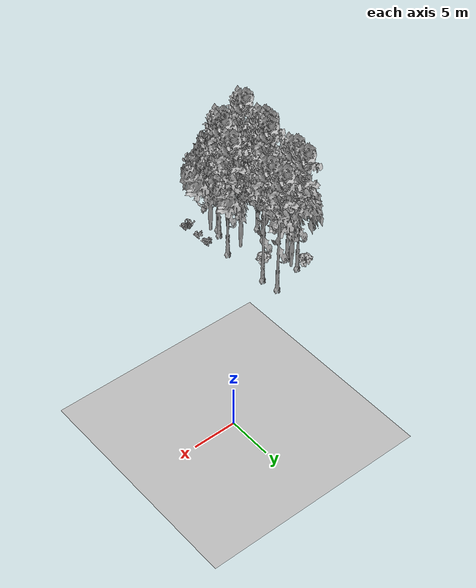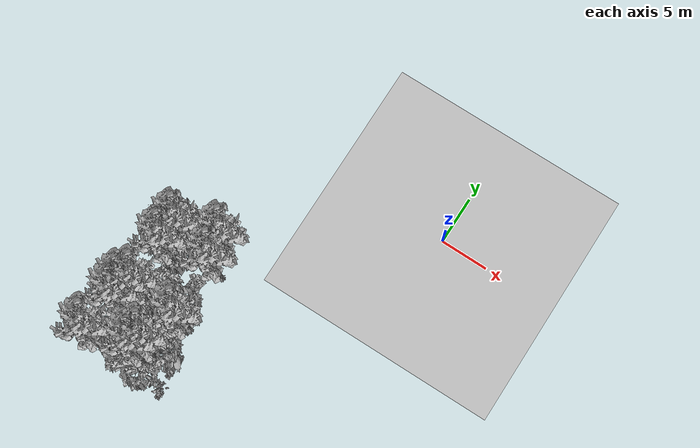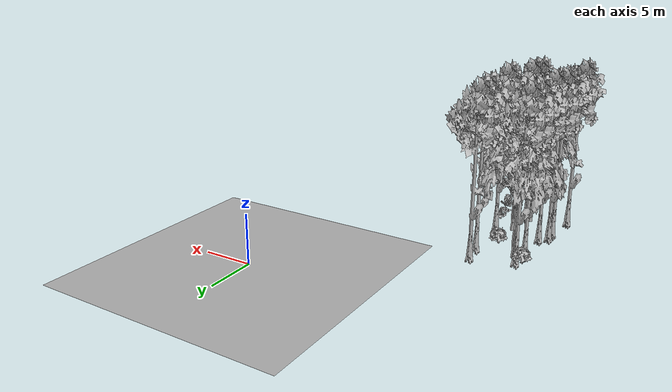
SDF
<sdf version="1.7">
 <world name="default">
  <model name="ground_plane">
   <static>1</static>
   <link name="link">
    <collision name="collision">
     <pose>-50 0 0 0 -0 0</pose>
     <geometry><plane><normal>0 0 1</normal><size>80 80</size></plane></geometry>
     <surface><contact><ode><min_depth>0.01</min_depth><max_vel>0</max_vel></ode></contact></surface>
    </collision>
    <visual name="grass">
     <cast_shadows>0</cast_shadows>
     <geometry>
      <mesh>
       <scale>0.46714285714285714 0.46714285714285714 0.1</scale>
       <uri>file://grass_plane/meshes/grass_plane.dae</uri>
      </mesh>
     </geometry>
    </visual>
   </link>
  </model>
  <model name="Tree 16">
   <static>1</static>
   <pose>-16.002377514025188 -20.61025693314008 0 1.57079 -0 0</pose>
   <link name="link">
    <collision name="collision">
     <geometry><mesh><scale>3.5 5 3.5</scale><uri>model://tree_9/meshes/tree_9.obj</uri></mesh></geometry>
    </collision>
    <visual name="visual">
     <geometry><mesh><scale>3.5 5 3.5</scale><uri>model://tree_9/meshes/tree_9.obj</uri></mesh></geometry>
    </visual>
   </link>
  </model>
  <model name="Tree 17">
   <static>1</static>
   <pose>-21.480236284988532 -20.81113833691318 0 1.57079 -0 0</pose>
   <link name="link">
    <collision name="collision">
     <geometry><mesh><scale>3.5 5 3.5</scale><uri>model://tree_9/meshes/tree_9.obj</uri></mesh></geometry>
    </collision>
    <visual name="visual">
     <geometry><mesh><scale>3.5 5 3.5</scale><uri>model://tree_9/meshes/tree_9.obj</uri></mesh></geometry>
    </visual>
   </link>
  </model>
  <model name="Tree 65">
   <static>1</static>
   <pose>-20.75061241302066 -15.669950511626691 0 1.57079 -0 0</pose>
   <link name="link">
    <collision name="collision">
     <geometry><mesh><scale>3.5 5 3.5</scale><uri>model://tree_9/meshes/tree_9.obj</uri></mesh></geometry>
    </collision>
    <visual name="visual">
     <geometry><mesh><scale>3.5 5 3.5</scale><uri>model://tree_9/meshes/tree_9.obj</uri></mesh></geometry>
    </visual>
   </link>
  </model>
  <model name="Tree 106">
   <static>1</static>
   <pose>-17.320652611386077 -23.801288979243836 0 1.57079 -0 0</pose>
   <link name="link">
    <collision name="collision">
     <geometry><mesh><scale>3.5 5 3.5</scale><uri>model://tree_9/meshes/tree_9.obj</uri></mesh></geometry>
    </collision>
    <visual name="visual">
     <geometry><mesh><scale>3.5 5 3.5</scale><uri>model://tree_9/meshes/tree_9.obj</uri></mesh></geometry>
    </visual>
   </link>
  </model>
  <model name="Tree 171">
   <static>1</static>
   <pose>-21.54340260592421 -21.89334465396934 0 1.57079 -0 0</pose>
   <link name="link">
    <collision name="collision">
     <geometry><mesh><scale>3.5 5 3.5</scale><uri>model://tree_9/meshes/tree_9.obj</uri></mesh></geometry>
    </collision>
    <visual name="visual">
     <geometry><mesh><scale>3.5 5 3.5</scale><uri>model://tree_9/meshes/tree_9.obj</uri></mesh></geometry>
    </visual>
   </link>
  </model>
  <model name="Tree 189">
   <static>1</static>
   <pose>-16.507555315490254 -12.475427564751413 0 1.57079 -0 0</pose>
   <link name="link">
    <collision name="collision">
     <geometry><mesh><scale>3.5 5 3.5</scale><uri>model://tree_9/meshes/tree_9.obj</uri></mesh></geometry>
    </collision>
    <visual name="visual">
     <geometry><mesh><scale>3.5 5 3.5</scale><uri>model://tree_9/meshes/tree_9.obj</uri></mesh></geometry>
    </visual>
   </link>
  </model>
  <model name="Tree 229">
   <static>1</static>
   <pose>-20.221256819618233 -14.277723367856954 0 1.57079 -0 0</pose>
   <link name="link">
    <collision name="collision">
     <geometry><mesh><scale>3.5 5 3.5</scale><uri>model://tree_2/meshes/tree_2.obj</uri></mesh></geometry>
    </collision>
    <visual name="visual">
     <geometry><mesh><scale>3.5 5 3.5</scale><uri>model://tree_2/meshes/tree_2.obj</uri></mesh></geometry>
    </visual>
   </link>
  </model>
  <model name="Tree 242">
   <static>1</static>
   <pose>-17.09658727551912 -25.023869617494434 0 1.57079 -0 0</pose>
   <link name="link">
    <collision name="collision">
     <geometry><mesh><scale>3.5 5 3.5</scale><uri>model://tree_2/meshes/tree_2.obj</uri></mesh></geometry>
    </collision>
    <visual name="visual">
     <geometry><mesh><scale>3.5 5 3.5</scale><uri>model://tree_2/meshes/tree_2.obj</uri></mesh></geometry>
    </visual>
   </link>
  </model>
  <model name="Tree 303">
   <static>1</static>
   <pose>-17.93012198047878 -20.51378296901933 0 1.57079 -0 0</pose>
   <link name="link">
    <collision name="collision">
     <geometry><mesh><scale>3.5 5 3.5</scale><uri>model://tree_2/meshes/tree_2.obj</uri></mesh></geometry>
    </collision>
    <visual name="visual">
     <geometry><mesh><scale>3.5 5 3.5</scale><uri>model://tree_2/meshes/tree_2.obj</uri></mesh></geometry>
    </visual>
   </link>
  </model>
  <model name="Tree 327">
   <static>1</static>
   <pose>-20.552019978323248 -13.698890363191811 0 1.57079 -0 0</pose>
   <link name="link">
    <collision name="collision">
     <geometry><mesh><scale>3.5 5 3.5</scale><uri>model://tree_9/meshes/tree_9.obj</uri></mesh></geometry>
    </collision>
    <visual name="visual">
     <geometry><mesh><scale>3.5 5 3.5</scale><uri>model://tree_9/meshes/tree_9.obj</uri></mesh></geometry>
    </visual>
   </link>
  </model>
  <model name="Tree 512">
   <static>1</static>
   <pose>-17.846574872532734 -24.703737992978585 0 1.57079 -0 0</pose>
   <link name="link">
    <collision name="collision">
     <geometry><mesh><scale>3.5 5 3.5</scale><uri>model://tree_9/meshes/tree_9.obj</uri></mesh></geometry>
    </collision>
    <visual name="visual">
     <geometry><mesh><scale>3.5 5 3.5</scale><uri>model://tree_9/meshes/tree_9.obj</uri></mesh></geometry>
    </visual>
   </link>
  </model>
  <model name="Tree 546">
   <static>1</static>
   <pose>-18.723243198897926 -23.821326869444217 0 1.57079 -0 0</pose>
   <link name="link">
    <collision name="collision">
     <geometry><mesh><scale>3.5 5 3.5</scale><uri>model://tree_2/meshes/tree_2.obj</uri></mesh></geometry>
    </collision>
    <visual name="visual">
     <geometry><mesh><scale>3.5 5 3.5</scale><uri>model://tree_2/meshes/tree_2.obj</uri></mesh></geometry>
    </visual>
   </link>
  </model>
  <model name="Tree 573">
   <static>1</static>
   <pose>-20.756229660486742 -19.932016012318012 0 1.57079 -0 0</pose>
   <link name="link">
    <collision name="collision">
     <geometry><mesh><scale>3.5 5 3.5</scale><uri>model://tree_9/meshes/tree_9.obj</uri></mesh></geometry>
    </collision>
    <visual name="visual">
     <geometry><mesh><scale>3.5 5 3.5</scale><uri>model://tree_9/meshes/tree_9.obj</uri></mesh></geometry>
    </visual>
   </link>
  </model>
  <model name="Tree 576">
   <static>1</static>
   <pose>-16.24683100448554 -14.69669923220751 0 1.57079 -0 0</pose>
   <link name="link">
    <collision name="collision">
     <geometry><mesh><scale>3.5 5 3.5</scale><uri>model://tree_9/meshes/tree_9.obj</uri></mesh></geometry>
    </collision>
    <visual name="visual">
     <geometry><mesh><scale>3.5 5 3.5</scale><uri>model://tree_9/meshes/tree_9.obj</uri></mesh></geometry>
    </visual>
   </link>
  </model>
  <model name="Tree 627">
   <static>1</static>
   <pose>-21.96080627801628 -25.733927696886852 0 1.57079 -0 0</pose>
   <link name="link">
    <collision name="collision">
     <geometry><mesh><scale>3.5 5 3.5</scale><uri>model://tree_9/meshes/tree_9.obj</uri></mesh></geometry>
    </collision>
    <visual name="visual">
     <geometry><mesh><scale>3.5 5 3.5</scale><uri>model://tree_9/meshes/tree_9.obj</uri></mesh></geometry>
    </visual>
   </link>
  </model>
  <model name="Bush 112">
   <static>1</static>
   <pose>-17.844591258157624 -16.638202374326426 0 1.57079 -0 0</pose>
   <link name="link">
    <collision name="collision">
     <geometry><mesh><scale>2 2 2</scale><uri>model://bush_1/meshes/bush_1.obj</uri></mesh></geometry>
     <surface><contact><collide_without_contact>false</collide_without_contact></contact></surface>
    </collision>
    <visual name="visual">
     <geometry><mesh><scale>2 2 2</scale><uri>model://bush_1/meshes/bush_1.obj</uri></mesh></geometry>
    </visual>
   </link>
  </model>
  <model name="Bush 224">
   <static>1</static>
   <pose>-18.14625672681925 -27.788797366098407 0 1.57079 -0 0</pose>
   <link name="link">
    <collision name="collision">
     <geometry><mesh><scale>2 2 2</scale><uri>model://bush_0/meshes/bush_0.obj</uri></mesh></geometry>
     <surface><contact><collide_without_contact>false</collide_without_contact></contact></surface>
    </collision>
    <visual name="visual">
     <geometry><mesh><scale>2 2 2</scale><uri>model://bush_0/meshes/bush_0.obj</uri></mesh></geometry>
    </visual>
   </link>
  </model>
  <model name="Bush 364">
   <static>1</static>
   <pose>-15.299457183803838 -23.72406782451965 0 1.57079 -0 0</pose>
   <link name="link">
    <collision name="collision">
     <geometry><mesh><scale>2 2 2</scale><uri>model://bush_2/meshes/bush_2.obj</uri></mesh></geometry>
     <surface><contact><collide_without_contact>false</collide_without_contact></contact></surface>
    </collision>
    <visual name="visual">
     <geometry><mesh><scale>2 2 2</scale><uri>model://bush_2/meshes/bush_2.obj</uri></mesh></geometry>
    </visual>
   </link>
  </model>
  <model name="Bush 416">
   <static>1</static>
   <pose>-15.146330540810077 -26.721845571452256 0 1.57079 -0 0</pose>
   <link name="link">
    <collision name="collision">
     <geometry><mesh><scale>2 2 2</scale><uri>model://bush_4/meshes/bush_4.obj</uri></mesh></geometry>
     <surface><contact><collide_without_contact>false</collide_without_contact></contact></surface>
    </collision>
    <visual name="visual">
     <geometry><mesh><scale>2 2 2</scale><uri>model://bush_4/meshes/bush_4.obj</uri></mesh></geometry>
    </visual>
   </link>
  </model>
  <model name="Bush 483">
   <static>1</static>
   <pose>-15.365408336076733 -23.50507424939871 0 1.57079 -0 0</pose>
   <link name="link">
    <collision name="collision">
     <geometry><mesh><scale>2 2 2</scale><uri>model://bush_2/meshes/bush_2.obj</uri></mesh></geometry>
     <surface><contact><collide_without_contact>false</collide_without_contact></contact></surface>
    </collision>
    <visual name="visual">
     <geometry><mesh><scale>2 2 2</scale><uri>model://bush_2/meshes/bush_2.obj</uri></mesh></geometry>
    </visual>
   </link>
  </model>
  <model name="Bush 505">
   <static>1</static>
   <pose>-21.318135427492916 -13.42503374873737 0 1.57079 -0 0</pose>
   <link name="link">
    <collision name="collision">
     <geometry><mesh><scale>2 2 2</scale><uri>model://bush_1/meshes/bush_1.obj</uri></mesh></geometry>
     <surface><contact><collide_without_contact>false</collide_without_contact></contact></surface>
    </collision>
    <visual name="visual">
     <geometry><mesh><scale>2 2 2</scale><uri>model://bush_1/meshes/bush_1.obj</uri></mesh></geometry>
    </visual>
   </link>
  </model>
  <model name="Bush 598">
   <static>1</static>
   <pose>-15.310841991361432 -25.198440769456234 0 1.57079 -0 0</pose>
   <link name="link">
    <collision name="collision">
     <geometry><mesh><scale>2 2 2</scale><uri>model://bush_2/meshes/bush_2.obj</uri></mesh></geometry>
     <surface><contact><collide_without_contact>false</collide_without_contact></contact></surface>
    </collision>
    <visual name="visual">
     <geometry><mesh><scale>2 2 2</scale><uri>model://bush_2/meshes/bush_2.obj</uri></mesh></geometry>
    </visual>
   </link>
  </model>
  <model name="Bush 631">
   <static>1</static>
   <pose>-15.048746031623907 -27.38438346822307 0 1.57079 -0 0</pose>
   <link name="link">
    <collision name="collision">
     <geometry><mesh><scale>2 2 2</scale><uri>model://bush_2/meshes/bush_2.obj</uri></mesh></geometry>
     <surface><contact><collide_without_contact>false</collide_without_contact></contact></surface>
    </collision>
    <visual name="visual">
     <geometry><mesh><scale>2 2 2</scale><uri>model://bush_2/meshes/bush_2.obj</uri></mesh></geometry>
    </visual>
   </link>
  </model>
 </world>
</sdf>
